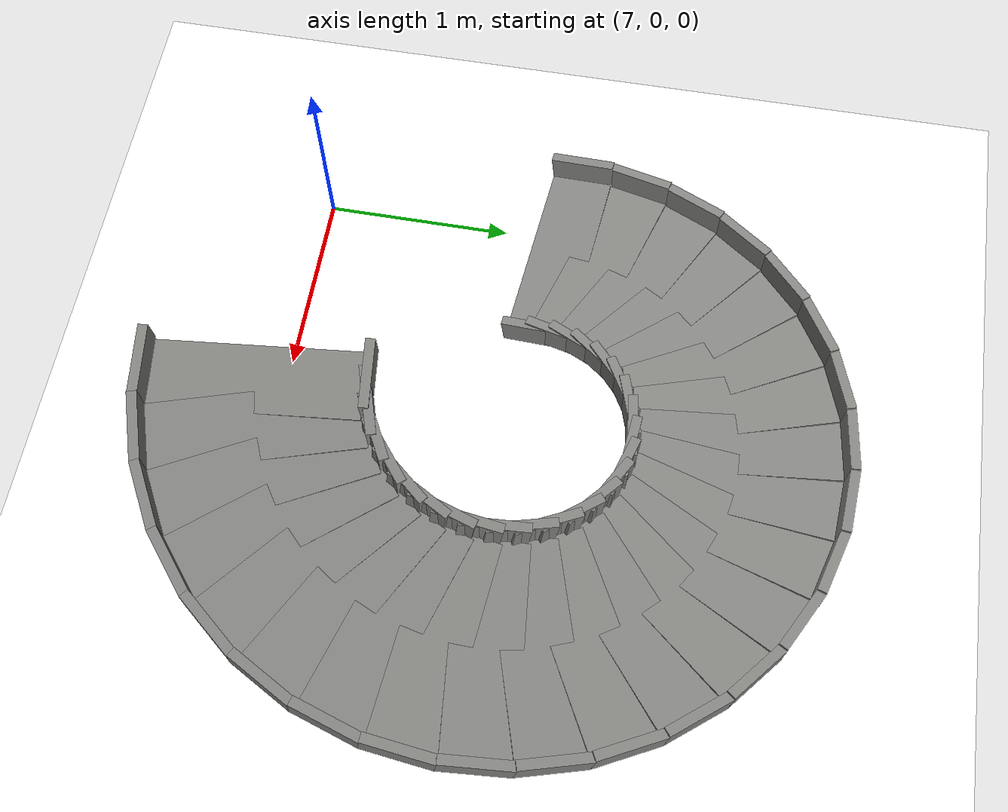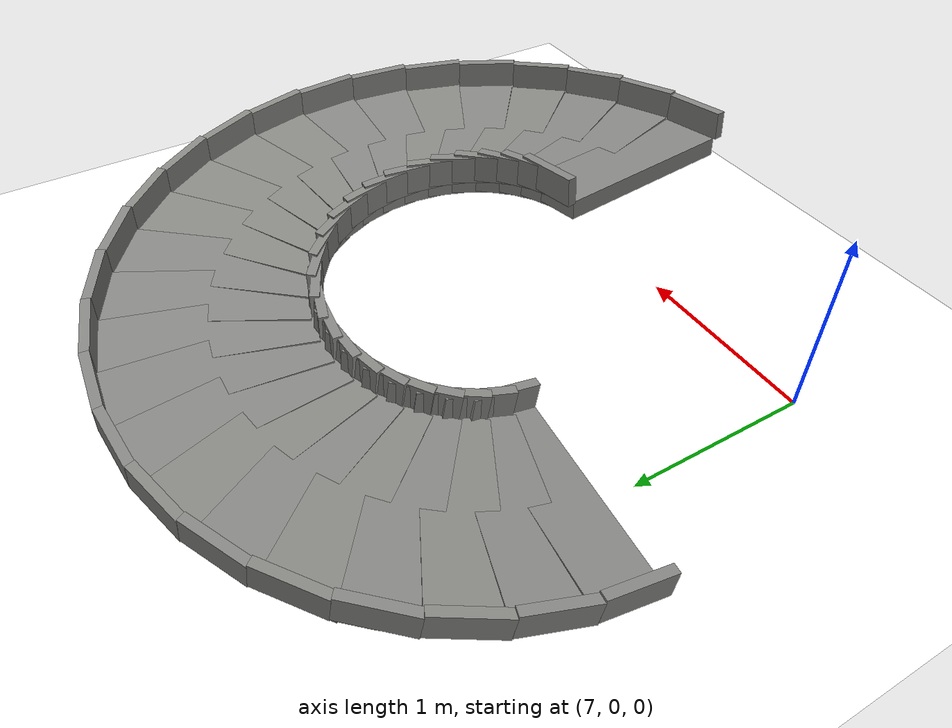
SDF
<sdf version="1.10">
 <world name="cfr_obstacle_course">
  <model name="ground">
   <static>true</static>
   <pose>0.005 -4.540 0 0 0 0</pose>
   <link name="link">
    <collision name="collision">
     <geometry><plane><normal>0 0 1</normal><size>30 24</size></plane></geometry>
     <surface>
      <friction>
       <ode><mu>50</mu></ode>
       <bullet><friction>1</friction><rolling_friction>0.001</rolling_friction></bullet>
      </friction>
     </surface>
    </collision>
    <visual name="visual">
     <geometry><plane><normal>0 0 1</normal><size>30 24</size></plane></geometry>
     <material>
      <diffuse>1 1 1 1</diffuse>
      <pbr>
       <metal>
        <albedo_map>model://cfr_arduino_bridge/materials/asphalt_obstacle.png</albedo_map>
        <roughness>0.95</roughness>
        <metalness>0</metalness>
       </metal>
      </pbr>
     </material>
    </visual>
   </link>
  </model>
  <model name="helix">
   <static>true</static>
   <link name="link">
    <collision name="deck_0_collision">
     <pose>8.4168 0.0091 0.5718 0.0000 0.1117 6.3814</pose>
     <geometry><box><size>0.3522 1.0525 0.1000</size></box></geometry>
    </collision>
    <visual name="deck_0_visual">
     <pose>8.4168 0.0091 0.5718 0.0000 0.1117 6.3814</pose>
     <geometry><box><size>0.3522 1.0525 0.1000</size></box></geometry>
     <material><diffuse>0.52 0.52 0.51 1</diffuse></material>
    </visual>
    <collision name="inner_rail_0_collision">
     <pose>8.3628 0.5577 0.6980 0.0000 0.1117 6.3814</pose>
     <geometry><box><size>0.3522 0.0500 0.1524</size></box></geometry>
     <surface>
      <friction>
       <ode><mu>0.3</mu><mu2>0.6</mu2><fdir1>0 0 1</fdir1></ode>
       <bullet><friction>0.3</friction><friction2>0.6</friction2></bullet>
      </friction>
     </surface>
    </collision>
    <visual name="inner_rail_0_visual">
     <pose>8.3628 0.5577 0.6980 0.0000 0.1117 6.3814</pose>
     <geometry><box><size>0.3522 0.0500 0.1524</size></box></geometry>
     <material><diffuse>0.52 0.52 0.51 1</diffuse></material>
    </visual>
    <collision name="outer_rail_0_collision">
     <pose>8.4708 -0.5394 0.6980 0.0000 0.1117 6.3814</pose>
     <geometry><box><size>0.3522 0.0500 0.1524</size></box></geometry>
     <surface>
      <friction>
       <ode><mu>0.3</mu><mu2>0.6</mu2><fdir1>0 0 1</fdir1></ode>
       <bullet><friction>0.3</friction><friction2>0.6</friction2></bullet>
      </friction>
     </surface>
    </collision>
    <visual name="outer_rail_0_visual">
     <pose>8.4708 -0.5394 0.6980 0.0000 0.1117 6.3814</pose>
     <geometry><box><size>0.3522 0.0500 0.1524</size></box></geometry>
     <material><diffuse>0.52 0.52 0.51 1</diffuse></material>
    </visual>
    <collision name="deck_1_collision">
     <pose>8.6477 0.0551 0.5453 0.0000 0.1117 6.5777</pose>
     <geometry><box><size>0.3522 1.0525 0.1000</size></box></geometry>
    </collision>
    <visual name="deck_1_visual">
     <pose>8.6477 0.0551 0.5453 0.0000 0.1117 6.5777</pose>
     <geometry><box><size>0.3522 1.0525 0.1000</size></box></geometry>
     <material><diffuse>0.52 0.52 0.51 1</diffuse></material>
    </visual>
    <collision name="inner_rail_1_collision">
     <pose>8.4877 0.5826 0.6715 0.0000 0.1117 6.5777</pose>
     <geometry><box><size>0.3522 0.0500 0.1524</size></box></geometry>
     <surface>
      <friction>
       <ode><mu>0.3</mu><mu2>0.6</mu2><fdir1>0 0 1</fdir1></ode>
       <bullet><friction>0.3</friction><friction2>0.6</friction2></bullet>
      </friction>
     </surface>
    </collision>
    <visual name="inner_rail_1_visual">
     <pose>8.4877 0.5826 0.6715 0.0000 0.1117 6.5777</pose>
     <geometry><box><size>0.3522 0.0500 0.1524</size></box></geometry>
     <material><diffuse>0.52 0.52 0.51 1</diffuse></material>
    </visual>
    <collision name="outer_rail_1_collision">
     <pose>8.8078 -0.4724 0.6715 0.0000 0.1117 6.5777</pose>
     <geometry><box><size>0.3522 0.0500 0.1524</size></box></geometry>
     <surface>
      <friction>
       <ode><mu>0.3</mu><mu2>0.6</mu2><fdir1>0 0 1</fdir1></ode>
       <bullet><friction>0.3</friction><friction2>0.6</friction2></bullet>
      </friction>
     </surface>
    </collision>
    <visual name="outer_rail_1_visual">
     <pose>8.8078 -0.4724 0.6715 0.0000 0.1117 6.5777</pose>
     <geometry><box><size>0.3522 0.0500 0.1524</size></box></geometry>
     <material><diffuse>0.52 0.52 0.51 1</diffuse></material>
    </visual>
    <collision name="deck_2_collision">
     <pose>8.8653 0.1452 0.5189 0.0000 0.1117 6.7741</pose>
     <geometry><box><size>0.3522 1.0525 0.1000</size></box></geometry>
    </collision>
    <visual name="deck_2_visual">
     <pose>8.8653 0.1452 0.5189 0.0000 0.1117 6.7741</pose>
     <geometry><box><size>0.3522 1.0525 0.1000</size></box></geometry>
     <material><diffuse>0.52 0.52 0.51 1</diffuse></material>
    </visual>
    <collision name="inner_rail_2_collision">
     <pose>8.6054 0.6313 0.6451 0.0000 0.1117 6.7741</pose>
     <geometry><box><size>0.3522 0.0500 0.1524</size></box></geometry>
     <surface>
      <friction>
       <ode><mu>0.3</mu><mu2>0.6</mu2><fdir1>0 0 1</fdir1></ode>
       <bullet><friction>0.3</friction><friction2>0.6</friction2></bullet>
      </friction>
     </surface>
    </collision>
    <visual name="inner_rail_2_visual">
     <pose>8.6054 0.6313 0.6451 0.0000 0.1117 6.7741</pose>
     <geometry><box><size>0.3522 0.0500 0.1524</size></box></geometry>
     <material><diffuse>0.52 0.52 0.51 1</diffuse></material>
    </visual>
    <collision name="outer_rail_2_collision">
     <pose>9.1251 -0.3410 0.6451 0.0000 0.1117 6.7741</pose>
     <geometry><box><size>0.3522 0.0500 0.1524</size></box></geometry>
     <surface>
      <friction>
       <ode><mu>0.3</mu><mu2>0.6</mu2><fdir1>0 0 1</fdir1></ode>
       <bullet><friction>0.3</friction><friction2>0.6</friction2></bullet>
      </friction>
     </surface>
    </collision>
    <visual name="outer_rail_2_visual">
     <pose>9.1251 -0.3410 0.6451 0.0000 0.1117 6.7741</pose>
     <geometry><box><size>0.3522 0.0500 0.1524</size></box></geometry>
     <material><diffuse>0.52 0.52 0.51 1</diffuse></material>
    </visual>
    <collision name="deck_3_collision">
     <pose>9.0610 0.2760 0.4924 0.0000 0.1117 6.9704</pose>
     <geometry><box><size>0.3522 1.0525 0.1000</size></box></geometry>
    </collision>
    <visual name="deck_3_visual">
     <pose>9.0610 0.2760 0.4924 0.0000 0.1117 6.9704</pose>
     <geometry><box><size>0.3522 1.0525 0.1000</size></box></geometry>
     <material><diffuse>0.52 0.52 0.51 1</diffuse></material>
    </visual>
    <collision name="inner_rail_3_collision">
     <pose>8.7113 0.7021 0.6186 0.0000 0.1117 6.9704</pose>
     <geometry><box><size>0.3522 0.0500 0.1524</size></box></geometry>
     <surface>
      <friction>
       <ode><mu>0.3</mu><mu2>0.6</mu2><fdir1>0 0 1</fdir1></ode>
       <bullet><friction>0.3</friction><friction2>0.6</friction2></bullet>
      </friction>
     </surface>
    </collision>
    <visual name="inner_rail_3_visual">
     <pose>8.7113 0.7021 0.6186 0.0000 0.1117 6.9704</pose>
     <geometry><box><size>0.3522 0.0500 0.1524</size></box></geometry>
     <material><diffuse>0.52 0.52 0.51 1</diffuse></material>
    </visual>
    <collision name="outer_rail_3_collision">
     <pose>9.4107 -0.1501 0.6186 0.0000 0.1117 6.9704</pose>
     <geometry><box><size>0.3522 0.0500 0.1524</size></box></geometry>
     <surface>
      <friction>
       <ode><mu>0.3</mu><mu2>0.6</mu2><fdir1>0 0 1</fdir1></ode>
       <bullet><friction>0.3</friction><friction2>0.6</friction2></bullet>
      </friction>
     </surface>
    </collision>
    <visual name="outer_rail_3_visual">
     <pose>9.4107 -0.1501 0.6186 0.0000 0.1117 6.9704</pose>
     <geometry><box><size>0.3522 0.0500 0.1524</size></box></geometry>
     <material><diffuse>0.52 0.52 0.51 1</diffuse></material>
    </visual>
    <collision name="deck_4_collision">
     <pose>9.2275 0.4425 0.4659 0.0000 0.1117 7.1668</pose>
     <geometry><box><size>0.3522 1.0525 0.1000</size></box></geometry>
    </collision>
    <visual name="deck_4_visual">
     <pose>9.2275 0.4425 0.4659 0.0000 0.1117 7.1668</pose>
     <geometry><box><size>0.3522 1.0525 0.1000</size></box></geometry>
     <material><diffuse>0.52 0.52 0.51 1</diffuse></material>
    </visual>
    <collision name="inner_rail_4_collision">
     <pose>8.8014 0.7922 0.5921 0.0000 0.1117 7.1668</pose>
     <geometry><box><size>0.3522 0.0500 0.1524</size></box></geometry>
     <surface>
      <friction>
       <ode><mu>0.3</mu><mu2>0.6</mu2><fdir1>0 0 1</fdir1></ode>
       <bullet><friction>0.3</friction><friction2>0.6</friction2></bullet>
      </friction>
     </surface>
    </collision>
    <visual name="inner_rail_4_visual">
     <pose>8.8014 0.7922 0.5921 0.0000 0.1117 7.1668</pose>
     <geometry><box><size>0.3522 0.0500 0.1524</size></box></geometry>
     <material><diffuse>0.52 0.52 0.51 1</diffuse></material>
    </visual>
    <collision name="outer_rail_4_collision">
     <pose>9.6536 0.0928 0.5921 0.0000 0.1117 7.1668</pose>
     <geometry><box><size>0.3522 0.0500 0.1524</size></box></geometry>
     <surface>
      <friction>
       <ode><mu>0.3</mu><mu2>0.6</mu2><fdir1>0 0 1</fdir1></ode>
       <bullet><friction>0.3</friction><friction2>0.6</friction2></bullet>
      </friction>
     </surface>
    </collision>
    <visual name="outer_rail_4_visual">
     <pose>9.6536 0.0928 0.5921 0.0000 0.1117 7.1668</pose>
     <geometry><box><size>0.3522 0.0500 0.1524</size></box></geometry>
     <material><diffuse>0.52 0.52 0.51 1</diffuse></material>
    </visual>
    <collision name="deck_5_collision">
     <pose>9.3583 0.6382 0.4395 0.0000 0.1117 7.3631</pose>
     <geometry><box><size>0.3522 1.0525 0.1000</size></box></geometry>
    </collision>
    <visual name="deck_5_visual">
     <pose>9.3583 0.6382 0.4395 0.0000 0.1117 7.3631</pose>
     <geometry><box><size>0.3522 1.0525 0.1000</size></box></geometry>
     <material><diffuse>0.52 0.52 0.51 1</diffuse></material>
    </visual>
    <collision name="inner_rail_5_collision">
     <pose>8.8722 0.8981 0.5657 0.0000 0.1117 7.3631</pose>
     <geometry><box><size>0.3522 0.0500 0.1524</size></box></geometry>
     <surface>
      <friction>
       <ode><mu>0.3</mu><mu2>0.6</mu2><fdir1>0 0 1</fdir1></ode>
       <bullet><friction>0.3</friction><friction2>0.6</friction2></bullet>
      </friction>
     </surface>
    </collision>
    <visual name="inner_rail_5_visual">
     <pose>8.8722 0.8981 0.5657 0.0000 0.1117 7.3631</pose>
     <geometry><box><size>0.3522 0.0500 0.1524</size></box></geometry>
     <material><diffuse>0.52 0.52 0.51 1</diffuse></material>
    </visual>
    <collision name="outer_rail_5_collision">
     <pose>9.8445 0.3784 0.5657 0.0000 0.1117 7.3631</pose>
     <geometry><box><size>0.3522 0.0500 0.1524</size></box></geometry>
     <surface>
      <friction>
       <ode><mu>0.3</mu><mu2>0.6</mu2><fdir1>0 0 1</fdir1></ode>
       <bullet><friction>0.3</friction><friction2>0.6</friction2></bullet>
      </friction>
     </surface>
    </collision>
    <visual name="outer_rail_5_visual">
     <pose>9.8445 0.3784 0.5657 0.0000 0.1117 7.3631</pose>
     <geometry><box><size>0.3522 0.0500 0.1524</size></box></geometry>
     <material><diffuse>0.52 0.52 0.51 1</diffuse></material>
    </visual>
    <collision name="deck_6_collision">
     <pose>9.4484 0.8558 0.4130 0.0000 0.1117 7.5595</pose>
     <geometry><box><size>0.3522 1.0525 0.1000</size></box></geometry>
    </collision>
    <visual name="deck_6_visual">
     <pose>9.4484 0.8558 0.4130 0.0000 0.1117 7.5595</pose>
     <geometry><box><size>0.3522 1.0525 0.1000</size></box></geometry>
     <material><diffuse>0.52 0.52 0.51 1</diffuse></material>
    </visual>
    <collision name="inner_rail_6_collision">
     <pose>8.9209 1.0158 0.5392 0.0000 0.1117 7.5595</pose>
     <geometry><box><size>0.3522 0.0500 0.1524</size></box></geometry>
     <surface>
      <friction>
       <ode><mu>0.3</mu><mu2>0.6</mu2><fdir1>0 0 1</fdir1></ode>
       <bullet><friction>0.3</friction><friction2>0.6</friction2></bullet>
      </friction>
     </surface>
    </collision>
    <visual name="inner_rail_6_visual">
     <pose>8.9209 1.0158 0.5392 0.0000 0.1117 7.5595</pose>
     <geometry><box><size>0.3522 0.0500 0.1524</size></box></geometry>
     <material><diffuse>0.52 0.52 0.51 1</diffuse></material>
    </visual>
    <collision name="outer_rail_6_collision">
     <pose>9.9759 0.6958 0.5392 0.0000 0.1117 7.5595</pose>
     <geometry><box><size>0.3522 0.0500 0.1524</size></box></geometry>
     <surface>
      <friction>
       <ode><mu>0.3</mu><mu2>0.6</mu2><fdir1>0 0 1</fdir1></ode>
       <bullet><friction>0.3</friction><friction2>0.6</friction2></bullet>
      </friction>
     </surface>
    </collision>
    <visual name="outer_rail_6_visual">
     <pose>9.9759 0.6958 0.5392 0.0000 0.1117 7.5595</pose>
     <geometry><box><size>0.3522 0.0500 0.1524</size></box></geometry>
     <material><diffuse>0.52 0.52 0.51 1</diffuse></material>
    </visual>
    <collision name="deck_7_collision">
     <pose>9.4944 1.0867 0.3866 0.0000 0.1117 7.7558</pose>
     <geometry><box><size>0.3522 1.0525 0.1000</size></box></geometry>
    </collision>
    <visual name="deck_7_visual">
     <pose>9.4944 1.0867 0.3866 0.0000 0.1117 7.7558</pose>
     <geometry><box><size>0.3522 1.0525 0.1000</size></box></geometry>
     <material><diffuse>0.52 0.52 0.51 1</diffuse></material>
    </visual>
    <collision name="inner_rail_7_collision">
     <pose>8.9458 1.1407 0.5128 0.0000 0.1117 7.7558</pose>
     <geometry><box><size>0.3522 0.0500 0.1524</size></box></geometry>
     <surface>
      <friction>
       <ode><mu>0.3</mu><mu2>0.6</mu2><fdir1>0 0 1</fdir1></ode>
       <bullet><friction>0.3</friction><friction2>0.6</friction2></bullet>
      </friction>
     </surface>
    </collision>
    <visual name="inner_rail_7_visual">
     <pose>8.9458 1.1407 0.5128 0.0000 0.1117 7.7558</pose>
     <geometry><box><size>0.3522 0.0500 0.1524</size></box></geometry>
     <material><diffuse>0.52 0.52 0.51 1</diffuse></material>
    </visual>
    <collision name="outer_rail_7_collision">
     <pose>10.0430 1.0327 0.5128 0.0000 0.1117 7.7558</pose>
     <geometry><box><size>0.3522 0.0500 0.1524</size></box></geometry>
     <surface>
      <friction>
       <ode><mu>0.3</mu><mu2>0.6</mu2><fdir1>0 0 1</fdir1></ode>
       <bullet><friction>0.3</friction><friction2>0.6</friction2></bullet>
      </friction>
     </surface>
    </collision>
    <visual name="outer_rail_7_visual">
     <pose>10.0430 1.0327 0.5128 0.0000 0.1117 7.7558</pose>
     <geometry><box><size>0.3522 0.0500 0.1524</size></box></geometry>
     <material><diffuse>0.52 0.52 0.51 1</diffuse></material>
    </visual>
    <collision name="deck_8_collision">
     <pose>9.4944 1.3221 0.3601 0.0000 0.1117 7.9522</pose>
     <geometry><box><size>0.3522 1.0525 0.1000</size></box></geometry>
    </collision>
    <visual name="deck_8_visual">
     <pose>9.4944 1.3221 0.3601 0.0000 0.1117 7.9522</pose>
     <geometry><box><size>0.3522 1.0525 0.1000</size></box></geometry>
     <material><diffuse>0.52 0.52 0.51 1</diffuse></material>
    </visual>
    <collision name="inner_rail_8_collision">
     <pose>8.9458 1.2681 0.4863 0.0000 0.1117 7.9522</pose>
     <geometry><box><size>0.3522 0.0500 0.1524</size></box></geometry>
     <surface>
      <friction>
       <ode><mu>0.3</mu><mu2>0.6</mu2><fdir1>0 0 1</fdir1></ode>
       <bullet><friction>0.3</friction><friction2>0.6</friction2></bullet>
      </friction>
     </surface>
    </collision>
    <visual name="inner_rail_8_visual">
     <pose>8.9458 1.2681 0.4863 0.0000 0.1117 7.9522</pose>
     <geometry><box><size>0.3522 0.0500 0.1524</size></box></geometry>
     <material><diffuse>0.52 0.52 0.51 1</diffuse></material>
    </visual>
    <collision name="outer_rail_8_collision">
     <pose>10.0430 1.3762 0.4863 0.0000 0.1117 7.9522</pose>
     <geometry><box><size>0.3522 0.0500 0.1524</size></box></geometry>
     <surface>
      <friction>
       <ode><mu>0.3</mu><mu2>0.6</mu2><fdir1>0 0 1</fdir1></ode>
       <bullet><friction>0.3</friction><friction2>0.6</friction2></bullet>
      </friction>
     </surface>
    </collision>
    <visual name="outer_rail_8_visual">
     <pose>10.0430 1.3762 0.4863 0.0000 0.1117 7.9522</pose>
     <geometry><box><size>0.3522 0.0500 0.1524</size></box></geometry>
     <material><diffuse>0.52 0.52 0.51 1</diffuse></material>
    </visual>
    <collision name="deck_9_collision">
     <pose>9.4484 1.5531 0.3336 0.0000 0.1117 8.1485</pose>
     <geometry><box><size>0.3522 1.0525 0.1000</size></box></geometry>
    </collision>
    <visual name="deck_9_visual">
     <pose>9.4484 1.5531 0.3336 0.0000 0.1117 8.1485</pose>
     <geometry><box><size>0.3522 1.0525 0.1000</size></box></geometry>
     <material><diffuse>0.52 0.52 0.51 1</diffuse></material>
    </visual>
    <collision name="inner_rail_9_collision">
     <pose>8.9209 1.3931 0.4598 0.0000 0.1117 8.1485</pose>
     <geometry><box><size>0.3522 0.0500 0.1524</size></box></geometry>
     <surface>
      <friction>
       <ode><mu>0.3</mu><mu2>0.6</mu2><fdir1>0 0 1</fdir1></ode>
       <bullet><friction>0.3</friction><friction2>0.6</friction2></bullet>
      </friction>
     </surface>
    </collision>
    <visual name="inner_rail_9_visual">
     <pose>8.9209 1.3931 0.4598 0.0000 0.1117 8.1485</pose>
     <geometry><box><size>0.3522 0.0500 0.1524</size></box></geometry>
     <material><diffuse>0.52 0.52 0.51 1</diffuse></material>
    </visual>
    <collision name="outer_rail_9_collision">
     <pose>9.9759 1.7131 0.4598 0.0000 0.1117 8.1485</pose>
     <geometry><box><size>0.3522 0.0500 0.1524</size></box></geometry>
     <surface>
      <friction>
       <ode><mu>0.3</mu><mu2>0.6</mu2><fdir1>0 0 1</fdir1></ode>
       <bullet><friction>0.3</friction><friction2>0.6</friction2></bullet>
      </friction>
     </surface>
    </collision>
    <visual name="outer_rail_9_visual">
     <pose>9.9759 1.7131 0.4598 0.0000 0.1117 8.1485</pose>
     <geometry><box><size>0.3522 0.0500 0.1524</size></box></geometry>
     <material><diffuse>0.52 0.52 0.51 1</diffuse></material>
    </visual>
    <collision name="deck_10_collision">
     <pose>9.3583 1.7706 0.3072 0.0000 0.1117 8.3449</pose>
     <geometry><box><size>0.3522 1.0525 0.1000</size></box></geometry>
    </collision>
    <visual name="deck_10_visual">
     <pose>9.3583 1.7706 0.3072 0.0000 0.1117 8.3449</pose>
     <geometry><box><size>0.3522 1.0525 0.1000</size></box></geometry>
     <material><diffuse>0.52 0.52 0.51 1</diffuse></material>
    </visual>
    <collision name="inner_rail_10_collision">
     <pose>8.8722 1.5107 0.4334 0.0000 0.1117 8.3449</pose>
     <geometry><box><size>0.3522 0.0500 0.1524</size></box></geometry>
     <surface>
      <friction>
       <ode><mu>0.3</mu><mu2>0.6</mu2><fdir1>0 0 1</fdir1></ode>
       <bullet><friction>0.3</friction><friction2>0.6</friction2></bullet>
      </friction>
     </surface>
    </collision>
    <visual name="inner_rail_10_visual">
     <pose>8.8722 1.5107 0.4334 0.0000 0.1117 8.3449</pose>
     <geometry><box><size>0.3522 0.0500 0.1524</size></box></geometry>
     <material><diffuse>0.52 0.52 0.51 1</diffuse></material>
    </visual>
    <collision name="outer_rail_10_collision">
     <pose>9.8445 2.0304 0.4334 0.0000 0.1117 8.3449</pose>
     <geometry><box><size>0.3522 0.0500 0.1524</size></box></geometry>
     <surface>
      <friction>
       <ode><mu>0.3</mu><mu2>0.6</mu2><fdir1>0 0 1</fdir1></ode>
       <bullet><friction>0.3</friction><friction2>0.6</friction2></bullet>
      </friction>
     </surface>
    </collision>
    <visual name="outer_rail_10_visual">
     <pose>9.8445 2.0304 0.4334 0.0000 0.1117 8.3449</pose>
     <geometry><box><size>0.3522 0.0500 0.1524</size></box></geometry>
     <material><diffuse>0.52 0.52 0.51 1</diffuse></material>
    </visual>
    <collision name="deck_11_collision">
     <pose>9.2275 1.9664 0.2807 0.0000 0.1117 8.5412</pose>
     <geometry><box><size>0.3522 1.0525 0.1000</size></box></geometry>
    </collision>
    <visual name="deck_11_visual">
     <pose>9.2275 1.9664 0.2807 0.0000 0.1117 8.5412</pose>
     <geometry><box><size>0.3522 1.0525 0.1000</size></box></geometry>
     <material><diffuse>0.52 0.52 0.51 1</diffuse></material>
    </visual>
    <collision name="inner_rail_11_collision">
     <pose>8.8014 1.6167 0.4069 0.0000 0.1117 8.5412</pose>
     <geometry><box><size>0.3522 0.0500 0.1524</size></box></geometry>
     <surface>
      <friction>
       <ode><mu>0.3</mu><mu2>0.6</mu2><fdir1>0 0 1</fdir1></ode>
       <bullet><friction>0.3</friction><friction2>0.6</friction2></bullet>
      </friction>
     </surface>
    </collision>
    <visual name="inner_rail_11_visual">
     <pose>8.8014 1.6167 0.4069 0.0000 0.1117 8.5412</pose>
     <geometry><box><size>0.3522 0.0500 0.1524</size></box></geometry>
     <material><diffuse>0.52 0.52 0.51 1</diffuse></material>
    </visual>
    <collision name="outer_rail_11_collision">
     <pose>9.6536 2.3161 0.4069 0.0000 0.1117 8.5412</pose>
     <geometry><box><size>0.3522 0.0500 0.1524</size></box></geometry>
     <surface>
      <friction>
       <ode><mu>0.3</mu><mu2>0.6</mu2><fdir1>0 0 1</fdir1></ode>
       <bullet><friction>0.3</friction><friction2>0.6</friction2></bullet>
      </friction>
     </surface>
    </collision>
    <visual name="outer_rail_11_visual">
     <pose>9.6536 2.3161 0.4069 0.0000 0.1117 8.5412</pose>
     <geometry><box><size>0.3522 0.0500 0.1524</size></box></geometry>
     <material><diffuse>0.52 0.52 0.51 1</diffuse></material>
    </visual>
    <collision name="deck_12_collision">
     <pose>9.0610 2.1329 0.2543 0.0000 0.1117 8.7376</pose>
     <geometry><box><size>0.3522 1.0525 0.1000</size></box></geometry>
    </collision>
    <visual name="deck_12_visual">
     <pose>9.0610 2.1329 0.2543 0.0000 0.1117 8.7376</pose>
     <geometry><box><size>0.3522 1.0525 0.1000</size></box></geometry>
     <material><diffuse>0.52 0.52 0.51 1</diffuse></material>
    </visual>
    <collision name="inner_rail_12_collision">
     <pose>8.7113 1.7067 0.3805 0.0000 0.1117 8.7376</pose>
     <geometry><box><size>0.3522 0.0500 0.1524</size></box></geometry>
     <surface>
      <friction>
       <ode><mu>0.3</mu><mu2>0.6</mu2><fdir1>0 0 1</fdir1></ode>
       <bullet><friction>0.3</friction><friction2>0.6</friction2></bullet>
      </friction>
     </surface>
    </collision>
    <visual name="inner_rail_12_visual">
     <pose>8.7113 1.7067 0.3805 0.0000 0.1117 8.7376</pose>
     <geometry><box><size>0.3522 0.0500 0.1524</size></box></geometry>
     <material><diffuse>0.52 0.52 0.51 1</diffuse></material>
    </visual>
    <collision name="outer_rail_12_collision">
     <pose>9.4107 2.5590 0.3805 0.0000 0.1117 8.7376</pose>
     <geometry><box><size>0.3522 0.0500 0.1524</size></box></geometry>
     <surface>
      <friction>
       <ode><mu>0.3</mu><mu2>0.6</mu2><fdir1>0 0 1</fdir1></ode>
       <bullet><friction>0.3</friction><friction2>0.6</friction2></bullet>
      </friction>
     </surface>
    </collision>
    <visual name="outer_rail_12_visual">
     <pose>9.4107 2.5590 0.3805 0.0000 0.1117 8.7376</pose>
     <geometry><box><size>0.3522 0.0500 0.1524</size></box></geometry>
     <material><diffuse>0.52 0.52 0.51 1</diffuse></material>
    </visual>
    <collision name="deck_13_collision">
     <pose>8.8653 2.2637 0.2278 0.0000 0.1117 8.9339</pose>
     <geometry><box><size>0.3522 1.0525 0.1000</size></box></geometry>
    </collision>
    <visual name="deck_13_visual">
     <pose>8.8653 2.2637 0.2278 0.0000 0.1117 8.9339</pose>
     <geometry><box><size>0.3522 1.0525 0.1000</size></box></geometry>
     <material><diffuse>0.52 0.52 0.51 1</diffuse></material>
    </visual>
    <collision name="inner_rail_13_collision">
     <pose>8.6054 1.7775 0.3540 0.0000 0.1117 8.9339</pose>
     <geometry><box><size>0.3522 0.0500 0.1524</size></box></geometry>
     <surface>
      <friction>
       <ode><mu>0.3</mu><mu2>0.6</mu2><fdir1>0 0 1</fdir1></ode>
       <bullet><friction>0.3</friction><friction2>0.6</friction2></bullet>
      </friction>
     </surface>
    </collision>
    <visual name="inner_rail_13_visual">
     <pose>8.6054 1.7775 0.3540 0.0000 0.1117 8.9339</pose>
     <geometry><box><size>0.3522 0.0500 0.1524</size></box></geometry>
     <material><diffuse>0.52 0.52 0.51 1</diffuse></material>
    </visual>
    <collision name="outer_rail_13_collision">
     <pose>9.1251 2.7498 0.3540 0.0000 0.1117 8.9339</pose>
     <geometry><box><size>0.3522 0.0500 0.1524</size></box></geometry>
     <surface>
      <friction>
       <ode><mu>0.3</mu><mu2>0.6</mu2><fdir1>0 0 1</fdir1></ode>
       <bullet><friction>0.3</friction><friction2>0.6</friction2></bullet>
      </friction>
     </surface>
    </collision>
    <visual name="outer_rail_13_visual">
     <pose>9.1251 2.7498 0.3540 0.0000 0.1117 8.9339</pose>
     <geometry><box><size>0.3522 0.0500 0.1524</size></box></geometry>
     <material><diffuse>0.52 0.52 0.51 1</diffuse></material>
    </visual>
    <collision name="deck_14_collision">
     <pose>8.6477 2.3538 0.2014 0.0000 0.1117 9.1303</pose>
     <geometry><box><size>0.3522 1.0525 0.1000</size></box></geometry>
    </collision>
    <visual name="deck_14_visual">
     <pose>8.6477 2.3538 0.2014 0.0000 0.1117 9.1303</pose>
     <geometry><box><size>0.3522 1.0525 0.1000</size></box></geometry>
     <material><diffuse>0.52 0.52 0.51 1</diffuse></material>
    </visual>
    <collision name="inner_rail_14_collision">
     <pose>8.4877 1.8263 0.3276 0.0000 0.1117 9.1303</pose>
     <geometry><box><size>0.3522 0.0500 0.1524</size></box></geometry>
     <surface>
      <friction>
       <ode><mu>0.3</mu><mu2>0.6</mu2><fdir1>0 0 1</fdir1></ode>
       <bullet><friction>0.3</friction><friction2>0.6</friction2></bullet>
      </friction>
     </surface>
    </collision>
    <visual name="inner_rail_14_visual">
     <pose>8.4877 1.8263 0.3276 0.0000 0.1117 9.1303</pose>
     <geometry><box><size>0.3522 0.0500 0.1524</size></box></geometry>
     <material><diffuse>0.52 0.52 0.51 1</diffuse></material>
    </visual>
    <collision name="outer_rail_14_collision">
     <pose>8.8078 2.8813 0.3276 0.0000 0.1117 9.1303</pose>
     <geometry><box><size>0.3522 0.0500 0.1524</size></box></geometry>
     <surface>
      <friction>
       <ode><mu>0.3</mu><mu2>0.6</mu2><fdir1>0 0 1</fdir1></ode>
       <bullet><friction>0.3</friction><friction2>0.6</friction2></bullet>
      </friction>
     </surface>
    </collision>
    <visual name="outer_rail_14_visual">
     <pose>8.8078 2.8813 0.3276 0.0000 0.1117 9.1303</pose>
     <geometry><box><size>0.3522 0.0500 0.1524</size></box></geometry>
     <material><diffuse>0.52 0.52 0.51 1</diffuse></material>
    </visual>
    <collision name="deck_15_collision">
     <pose>8.4168 2.3997 0.1749 0.0000 0.1117 9.3266</pose>
     <geometry><box><size>0.3522 1.0525 0.1000</size></box></geometry>
    </collision>
    <visual name="deck_15_visual">
     <pose>8.4168 2.3997 0.1749 0.0000 0.1117 9.3266</pose>
     <geometry><box><size>0.3522 1.0525 0.1000</size></box></geometry>
     <material><diffuse>0.52 0.52 0.51 1</diffuse></material>
    </visual>
    <collision name="inner_rail_15_collision">
     <pose>8.3628 1.8511 0.3011 0.0000 0.1117 9.3266</pose>
     <geometry><box><size>0.3522 0.0500 0.1524</size></box></geometry>
     <surface>
      <friction>
       <ode><mu>0.3</mu><mu2>0.6</mu2><fdir1>0 0 1</fdir1></ode>
       <bullet><friction>0.3</friction><friction2>0.6</friction2></bullet>
      </friction>
     </surface>
    </collision>
    <visual name="inner_rail_15_visual">
     <pose>8.3628 1.8511 0.3011 0.0000 0.1117 9.3266</pose>
     <geometry><box><size>0.3522 0.0500 0.1524</size></box></geometry>
     <material><diffuse>0.52 0.52 0.51 1</diffuse></material>
    </visual>
    <collision name="outer_rail_15_collision">
     <pose>8.4708 2.9483 0.3011 0.0000 0.1117 9.3266</pose>
     <geometry><box><size>0.3522 0.0500 0.1524</size></box></geometry>
     <surface>
      <friction>
       <ode><mu>0.3</mu><mu2>0.6</mu2><fdir1>0 0 1</fdir1></ode>
       <bullet><friction>0.3</friction><friction2>0.6</friction2></bullet>
      </friction>
     </surface>
    </collision>
    <visual name="outer_rail_15_visual">
     <pose>8.4708 2.9483 0.3011 0.0000 0.1117 9.3266</pose>
     <geometry><box><size>0.3522 0.0500 0.1524</size></box></geometry>
     <material><diffuse>0.52 0.52 0.51 1</diffuse></material>
    </visual>
    <collision name="deck_16_collision">
     <pose>8.1814 2.3997 0.1484 0.0000 0.1117 9.5230</pose>
     <geometry><box><size>0.3522 1.0525 0.1000</size></box></geometry>
    </collision>
    <visual name="deck_16_visual">
     <pose>8.1814 2.3997 0.1484 0.0000 0.1117 9.5230</pose>
     <geometry><box><size>0.3522 1.0525 0.1000</size></box></geometry>
     <material><diffuse>0.52 0.52 0.51 1</diffuse></material>
    </visual>
    <collision name="inner_rail_16_collision">
     <pose>8.2354 1.8511 0.2746 0.0000 0.1117 9.5230</pose>
     <geometry><box><size>0.3522 0.0500 0.1524</size></box></geometry>
     <surface>
      <friction>
       <ode><mu>0.3</mu><mu2>0.6</mu2><fdir1>0 0 1</fdir1></ode>
       <bullet><friction>0.3</friction><friction2>0.6</friction2></bullet>
      </friction>
     </surface>
    </collision>
    <visual name="inner_rail_16_visual">
     <pose>8.2354 1.8511 0.2746 0.0000 0.1117 9.5230</pose>
     <geometry><box><size>0.3522 0.0500 0.1524</size></box></geometry>
     <material><diffuse>0.52 0.52 0.51 1</diffuse></material>
    </visual>
    <collision name="outer_rail_16_collision">
     <pose>8.1273 2.9483 0.2746 0.0000 0.1117 9.5230</pose>
     <geometry><box><size>0.3522 0.0500 0.1524</size></box></geometry>
     <surface>
      <friction>
       <ode><mu>0.3</mu><mu2>0.6</mu2><fdir1>0 0 1</fdir1></ode>
       <bullet><friction>0.3</friction><friction2>0.6</friction2></bullet>
      </friction>
     </surface>
    </collision>
    <visual name="outer_rail_16_visual">
     <pose>8.1273 2.9483 0.2746 0.0000 0.1117 9.5230</pose>
     <geometry><box><size>0.3522 0.0500 0.1524</size></box></geometry>
     <material><diffuse>0.52 0.52 0.51 1</diffuse></material>
    </visual>
    <collision name="deck_17_collision">
     <pose>7.9504 2.3538 0.1220 0.0000 0.1117 9.7193</pose>
     <geometry><box><size>0.3522 1.0525 0.1000</size></box></geometry>
    </collision>
    <visual name="deck_17_visual">
     <pose>7.9504 2.3538 0.1220 0.0000 0.1117 9.7193</pose>
     <geometry><box><size>0.3522 1.0525 0.1000</size></box></geometry>
     <material><diffuse>0.52 0.52 0.51 1</diffuse></material>
    </visual>
    <collision name="inner_rail_17_collision">
     <pose>8.1105 1.8263 0.2482 0.0000 0.1117 9.7193</pose>
     <geometry><box><size>0.3522 0.0500 0.1524</size></box></geometry>
     <surface>
      <friction>
       <ode><mu>0.3</mu><mu2>0.6</mu2><fdir1>0 0 1</fdir1></ode>
       <bullet><friction>0.3</friction><friction2>0.6</friction2></bullet>
      </friction>
     </surface>
    </collision>
    <visual name="inner_rail_17_visual">
     <pose>8.1105 1.8263 0.2482 0.0000 0.1117 9.7193</pose>
     <geometry><box><size>0.3522 0.0500 0.1524</size></box></geometry>
     <material><diffuse>0.52 0.52 0.51 1</diffuse></material>
    </visual>
    <collision name="outer_rail_17_collision">
     <pose>7.7904 2.8813 0.2482 0.0000 0.1117 9.7193</pose>
     <geometry><box><size>0.3522 0.0500 0.1524</size></box></geometry>
     <surface>
      <friction>
       <ode><mu>0.3</mu><mu2>0.6</mu2><fdir1>0 0 1</fdir1></ode>
       <bullet><friction>0.3</friction><friction2>0.6</friction2></bullet>
      </friction>
     </surface>
    </collision>
    <visual name="outer_rail_17_visual">
     <pose>7.7904 2.8813 0.2482 0.0000 0.1117 9.7193</pose>
     <geometry><box><size>0.3522 0.0500 0.1524</size></box></geometry>
     <material><diffuse>0.52 0.52 0.51 1</diffuse></material>
    </visual>
    <collision name="deck_18_collision">
     <pose>7.7329 2.2637 0.0955 0.0000 0.1117 9.9157</pose>
     <geometry><box><size>0.3522 1.0525 0.1000</size></box></geometry>
    </collision>
    <visual name="deck_18_visual">
     <pose>7.7329 2.2637 0.0955 0.0000 0.1117 9.9157</pose>
     <geometry><box><size>0.3522 1.0525 0.1000</size></box></geometry>
     <material><diffuse>0.52 0.52 0.51 1</diffuse></material>
    </visual>
    <collision name="inner_rail_18_collision">
     <pose>7.9928 1.7775 0.2217 0.0000 0.1117 9.9157</pose>
     <geometry><box><size>0.3522 0.0500 0.1524</size></box></geometry>
     <surface>
      <friction>
       <ode><mu>0.3</mu><mu2>0.6</mu2><fdir1>0 0 1</fdir1></ode>
       <bullet><friction>0.3</friction><friction2>0.6</friction2></bullet>
      </friction>
     </surface>
    </collision>
    <visual name="inner_rail_18_visual">
     <pose>7.9928 1.7775 0.2217 0.0000 0.1117 9.9157</pose>
     <geometry><box><size>0.3522 0.0500 0.1524</size></box></geometry>
     <material><diffuse>0.52 0.52 0.51 1</diffuse></material>
    </visual>
    <collision name="outer_rail_18_collision">
     <pose>7.4731 2.7498 0.2217 0.0000 0.1117 9.9157</pose>
     <geometry><box><size>0.3522 0.0500 0.1524</size></box></geometry>
     <surface>
      <friction>
       <ode><mu>0.3</mu><mu2>0.6</mu2><fdir1>0 0 1</fdir1></ode>
       <bullet><friction>0.3</friction><friction2>0.6</friction2></bullet>
      </friction>
     </surface>
    </collision>
    <visual name="outer_rail_18_visual">
     <pose>7.4731 2.7498 0.2217 0.0000 0.1117 9.9157</pose>
     <geometry><box><size>0.3522 0.0500 0.1524</size></box></geometry>
     <material><diffuse>0.52 0.52 0.51 1</diffuse></material>
    </visual>
    <collision name="deck_19_collision">
     <pose>7.5371 2.1329 0.0691 0.0000 0.1117 10.1120</pose>
     <geometry><box><size>0.3522 1.0525 0.1000</size></box></geometry>
    </collision>
    <visual name="deck_19_visual">
     <pose>7.5371 2.1329 0.0691 0.0000 0.1117 10.1120</pose>
     <geometry><box><size>0.3522 1.0525 0.1000</size></box></geometry>
     <material><diffuse>0.52 0.52 0.51 1</diffuse></material>
    </visual>
    <collision name="inner_rail_19_collision">
     <pose>7.8868 1.7067 0.1953 0.0000 0.1117 10.1120</pose>
     <geometry><box><size>0.3522 0.0500 0.1524</size></box></geometry>
     <surface>
      <friction>
       <ode><mu>0.3</mu><mu2>0.6</mu2><fdir1>0 0 1</fdir1></ode>
       <bullet><friction>0.3</friction><friction2>0.6</friction2></bullet>
      </friction>
     </surface>
    </collision>
    <visual name="inner_rail_19_visual">
     <pose>7.8868 1.7067 0.1953 0.0000 0.1117 10.1120</pose>
     <geometry><box><size>0.3522 0.0500 0.1524</size></box></geometry>
     <material><diffuse>0.52 0.52 0.51 1</diffuse></material>
    </visual>
    <collision name="outer_rail_19_collision">
     <pose>7.1874 2.5590 0.1953 0.0000 0.1117 10.1120</pose>
     <geometry><box><size>0.3522 0.0500 0.1524</size></box></geometry>
     <surface>
      <friction>
       <ode><mu>0.3</mu><mu2>0.6</mu2><fdir1>0 0 1</fdir1></ode>
       <bullet><friction>0.3</friction><friction2>0.6</friction2></bullet>
      </friction>
     </surface>
    </collision>
    <visual name="outer_rail_19_visual">
     <pose>7.1874 2.5590 0.1953 0.0000 0.1117 10.1120</pose>
     <geometry><box><size>0.3522 0.0500 0.1524</size></box></geometry>
     <material><diffuse>0.52 0.52 0.51 1</diffuse></material>
    </visual>
    <collision name="deck_20_collision">
     <pose>7.3707 1.9664 0.0426 0.0000 0.1117 10.3084</pose>
     <geometry><box><size>0.3522 1.0525 0.1000</size></box></geometry>
    </collision>
    <visual name="deck_20_visual">
     <pose>7.3707 1.9664 0.0426 0.0000 0.1117 10.3084</pose>
     <geometry><box><size>0.3522 1.0525 0.1000</size></box></geometry>
     <material><diffuse>0.52 0.52 0.51 1</diffuse></material>
    </visual>
    <collision name="inner_rail_20_collision">
     <pose>7.7968 1.6167 0.1688 0.0000 0.1117 10.3084</pose>
     <geometry><box><size>0.3522 0.0500 0.1524</size></box></geometry>
     <surface>
      <friction>
       <ode><mu>0.3</mu><mu2>0.6</mu2><fdir1>0 0 1</fdir1></ode>
       <bullet><friction>0.3</friction><friction2>0.6</friction2></bullet>
      </friction>
     </surface>
    </collision>
    <visual name="inner_rail_20_visual">
     <pose>7.7968 1.6167 0.1688 0.0000 0.1117 10.3084</pose>
     <geometry><box><size>0.3522 0.0500 0.1524</size></box></geometry>
     <material><diffuse>0.52 0.52 0.51 1</diffuse></material>
    </visual>
    <collision name="outer_rail_20_collision">
     <pose>6.9445 2.3161 0.1688 0.0000 0.1117 10.3084</pose>
     <geometry><box><size>0.3522 0.0500 0.1524</size></box></geometry>
     <surface>
      <friction>
       <ode><mu>0.3</mu><mu2>0.6</mu2><fdir1>0 0 1</fdir1></ode>
       <bullet><friction>0.3</friction><friction2>0.6</friction2></bullet>
      </friction>
     </surface>
    </collision>
    <visual name="outer_rail_20_visual">
     <pose>6.9445 2.3161 0.1688 0.0000 0.1117 10.3084</pose>
     <geometry><box><size>0.3522 0.0500 0.1524</size></box></geometry>
     <material><diffuse>0.52 0.52 0.51 1</diffuse></material>
    </visual>
    <collision name="deck_21_collision">
     <pose>7.2399 1.7706 0.0161 0.0000 0.1117 10.5047</pose>
     <geometry><box><size>0.3522 1.0525 0.1000</size></box></geometry>
    </collision>
    <visual name="deck_21_visual">
     <pose>7.2399 1.7706 0.0161 0.0000 0.1117 10.5047</pose>
     <geometry><box><size>0.3522 1.0525 0.1000</size></box></geometry>
     <material><diffuse>0.52 0.52 0.51 1</diffuse></material>
    </visual>
    <collision name="inner_rail_21_collision">
     <pose>7.7260 1.5107 0.1423 0.0000 0.1117 10.5047</pose>
     <geometry><box><size>0.3522 0.0500 0.1524</size></box></geometry>
     <surface>
      <friction>
       <ode><mu>0.3</mu><mu2>0.6</mu2><fdir1>0 0 1</fdir1></ode>
       <bullet><friction>0.3</friction><friction2>0.6</friction2></bullet>
      </friction>
     </surface>
    </collision>
    <visual name="inner_rail_21_visual">
     <pose>7.7260 1.5107 0.1423 0.0000 0.1117 10.5047</pose>
     <geometry><box><size>0.3522 0.0500 0.1524</size></box></geometry>
     <material><diffuse>0.52 0.52 0.51 1</diffuse></material>
    </visual>
    <collision name="outer_rail_21_collision">
     <pose>6.7537 2.0304 0.1423 0.0000 0.1117 10.5047</pose>
     <geometry><box><size>0.3522 0.0500 0.1524</size></box></geometry>
     <surface>
      <friction>
       <ode><mu>0.3</mu><mu2>0.6</mu2><fdir1>0 0 1</fdir1></ode>
       <bullet><friction>0.3</friction><friction2>0.6</friction2></bullet>
      </friction>
     </surface>
    </collision>
    <visual name="outer_rail_21_visual">
     <pose>6.7537 2.0304 0.1423 0.0000 0.1117 10.5047</pose>
     <geometry><box><size>0.3522 0.0500 0.1524</size></box></geometry>
     <material><diffuse>0.52 0.52 0.51 1</diffuse></material>
    </visual>
    <collision name="deck_22_collision">
     <pose>7.1497 1.5531 -0.0103 0.0000 0.1117 10.7010</pose>
     <geometry><box><size>0.3522 1.0525 0.1000</size></box></geometry>
    </collision>
    <visual name="deck_22_visual">
     <pose>7.1497 1.5531 -0.0103 0.0000 0.1117 10.7010</pose>
     <geometry><box><size>0.3522 1.0525 0.1000</size></box></geometry>
     <material><diffuse>0.52 0.52 0.51 1</diffuse></material>
    </visual>
    <collision name="inner_rail_22_collision">
     <pose>7.6772 1.3931 0.1159 0.0000 0.1117 10.7010</pose>
     <geometry><box><size>0.3522 0.0500 0.1524</size></box></geometry>
     <surface>
      <friction>
       <ode><mu>0.3</mu><mu2>0.6</mu2><fdir1>0 0 1</fdir1></ode>
       <bullet><friction>0.3</friction><friction2>0.6</friction2></bullet>
      </friction>
     </surface>
    </collision>
    <visual name="inner_rail_22_visual">
     <pose>7.6772 1.3931 0.1159 0.0000 0.1117 10.7010</pose>
     <geometry><box><size>0.3522 0.0500 0.1524</size></box></geometry>
     <material><diffuse>0.52 0.52 0.51 1</diffuse></material>
    </visual>
    <collision name="outer_rail_22_collision">
     <pose>6.6222 1.7131 0.1159 0.0000 0.1117 10.7010</pose>
     <geometry><box><size>0.3522 0.0500 0.1524</size></box></geometry>
     <surface>
      <friction>
       <ode><mu>0.3</mu><mu2>0.6</mu2><fdir1>0 0 1</fdir1></ode>
       <bullet><friction>0.3</friction><friction2>0.6</friction2></bullet>
      </friction>
     </surface>
    </collision>
    <visual name="outer_rail_22_visual">
     <pose>6.6222 1.7131 0.1159 0.0000 0.1117 10.7010</pose>
     <geometry><box><size>0.3522 0.0500 0.1524</size></box></geometry>
     <material><diffuse>0.52 0.52 0.51 1</diffuse></material>
    </visual>
    <collision name="deck_23_collision">
     <pose>7.1038 1.3221 -0.0368 0.0000 0.1117 10.8974</pose>
     <geometry><box><size>0.3522 1.0525 0.1000</size></box></geometry>
    </collision>
    <visual name="deck_23_visual">
     <pose>7.1038 1.3221 -0.0368 0.0000 0.1117 10.8974</pose>
     <geometry><box><size>0.3522 1.0525 0.1000</size></box></geometry>
     <material><diffuse>0.52 0.52 0.51 1</diffuse></material>
    </visual>
    <collision name="inner_rail_23_collision">
     <pose>7.6524 1.2681 0.0894 0.0000 0.1117 10.8974</pose>
     <geometry><box><size>0.3522 0.0500 0.1524</size></box></geometry>
     <surface>
      <friction>
       <ode><mu>0.3</mu><mu2>0.6</mu2><fdir1>0 0 1</fdir1></ode>
       <bullet><friction>0.3</friction><friction2>0.6</friction2></bullet>
      </friction>
     </surface>
    </collision>
    <visual name="inner_rail_23_visual">
     <pose>7.6524 1.2681 0.0894 0.0000 0.1117 10.8974</pose>
     <geometry><box><size>0.3522 0.0500 0.1524</size></box></geometry>
     <material><diffuse>0.52 0.52 0.51 1</diffuse></material>
    </visual>
    <collision name="outer_rail_23_collision">
     <pose>6.5552 1.3762 0.0894 0.0000 0.1117 10.8974</pose>
     <geometry><box><size>0.3522 0.0500 0.1524</size></box></geometry>
     <surface>
      <friction>
       <ode><mu>0.3</mu><mu2>0.6</mu2><fdir1>0 0 1</fdir1></ode>
       <bullet><friction>0.3</friction><friction2>0.6</friction2></bullet>
      </friction>
     </surface>
    </collision>
    <visual name="outer_rail_23_visual">
     <pose>6.5552 1.3762 0.0894 0.0000 0.1117 10.8974</pose>
     <geometry><box><size>0.3522 0.0500 0.1524</size></box></geometry>
     <material><diffuse>0.52 0.52 0.51 1</diffuse></material>
    </visual>
   </link>
  </model>
 </world>
</sdf>
